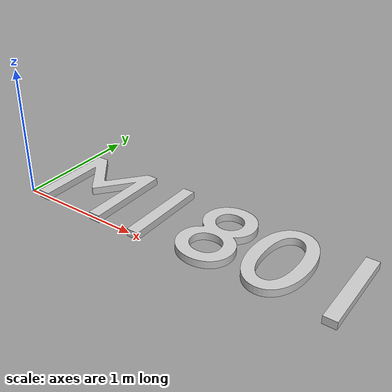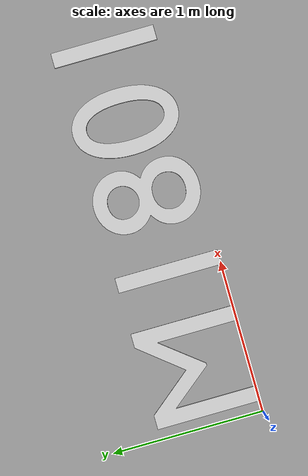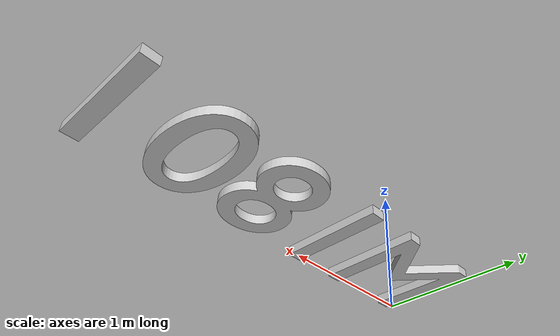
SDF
<?xml version='1.0'?>
    <sdf version='1.6'>
      <model name='M1801'>
        <link name='link'>
          <visual name='visual'>
            <geometry>
              <mesh>
                <uri>model://localros/text_3d_models/M1801/M1801.dae</uri>
              </mesh>
            </geometry>
          </visual>
        </link>
      </model>
    </sdf>
